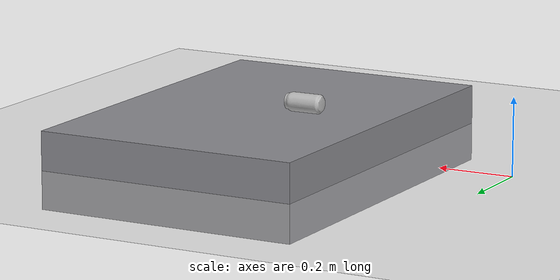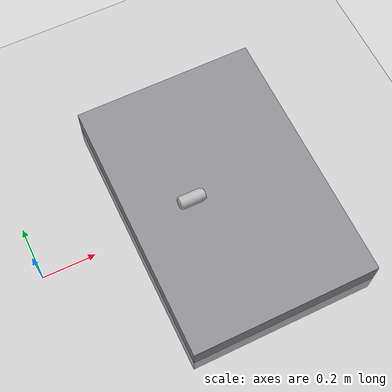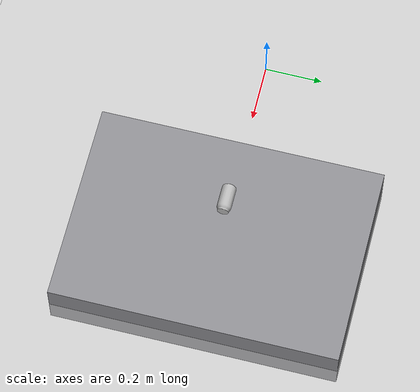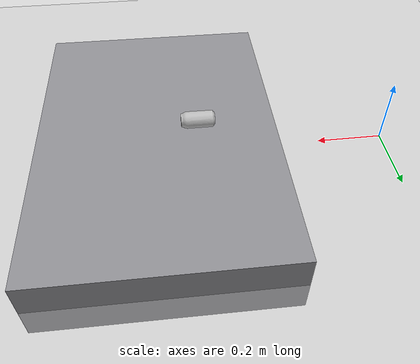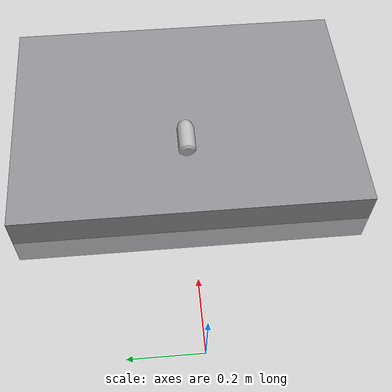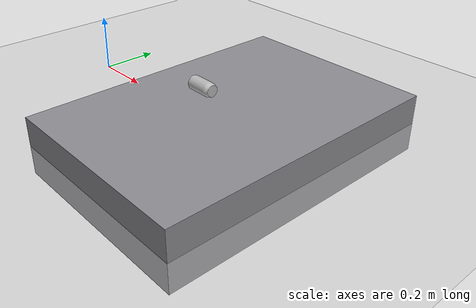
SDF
<?xml version='1.0' encoding='utf-8'?>
<sdf version="1.6">
  <world name="yolo_perception">
    <include>
      <uri>model://ground_plane</uri>
    </include>
    <include>
      <uri>model://sun</uri>
    </include>
    <model name="sorting_table">
      <static>true</static>
      <pose>0.70 0 0.0 0 0 0</pose>
      <link name="table_link">
        <collision name="collision">
          <geometry>
            <box>
              <size>0.70 1.00 0.20</size>
            </box>
          </geometry>
        </collision>
        <visual name="visual">
          <geometry>
            <box>
              <size>0.70 1.00 0.20</size>
            </box>
          </geometry>
          <material>
            <ambient>0.45 0.45 0.47 1</ambient>
            <diffuse>0.55 0.55 0.57 1</diffuse>
          </material>
        </visual>
      </link>
    </model>
    <model name="beverage_can">
      <pose>0.58 0 0.125 0 1.57079632679 0</pose>
      <link name="can_link">
        <inertial>
          <mass>0.05</mass>
          <inertia>
            <ixx>0.0000494792</ixx>
            <iyy>0.0000494792</iyy>
            <izz>0.000015625</izz>
          </inertia>
        </inertial>
        <collision name="can_collision">
          <geometry>
            <cylinder>
              <radius>0.025</radius>
              <length>0.10</length>
            </cylinder>
          </geometry>
          <surface>
            <friction>
              <ode>
                <mu>1.0</mu>
                <mu2>1.0</mu2>
              </ode>
            </friction>
            <contact>
              <ode>
                <kp>1000000</kp>
                <kd>100</kd>
                <max_vel>0.01</max_vel>
                <min_depth>0.001</min_depth>
              </ode>
            </contact>
          </surface>
        </collision>
        <!-- Textured can mesh, centered and fitted to the 50 x 100 mm collision. -->
        <visual name="printed_body">
          <geometry>
            <mesh>
              <uri>model://aubo_perception/models/beverage_can/meshes/coke_can.dae</uri>
            </mesh>
          </geometry>
        </visual>
      </link>
    </model>
    <physics name="sorting_physics" type="ode">
      <max_step_size>0.001</max_step_size>
      <real_time_update_rate>1000</real_time_update_rate>
      <ode>
        <solver>
          <type>quick</type>
          <iters>150</iters>
          <sor>1.3</sor>
        </solver>
      </ode>
    </physics>
  </world>
</sdf>
